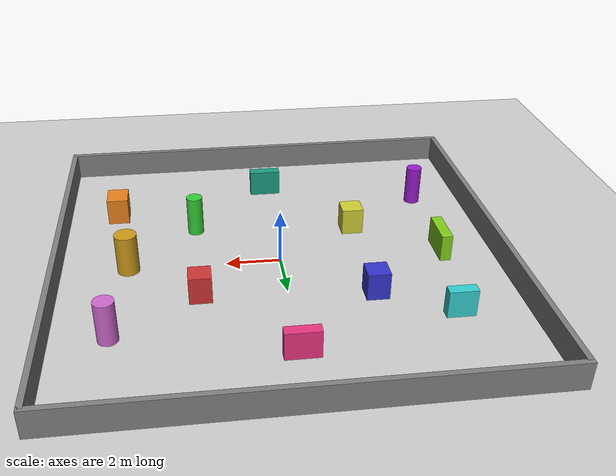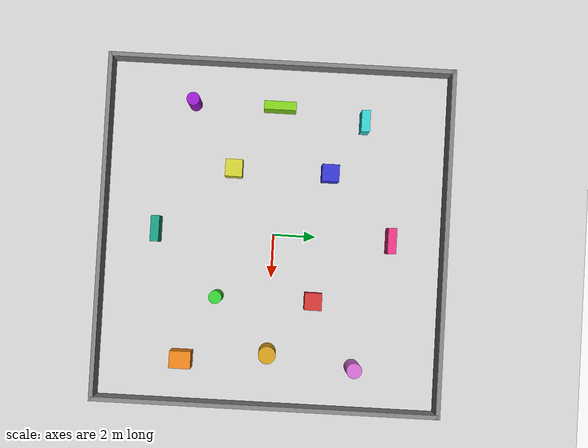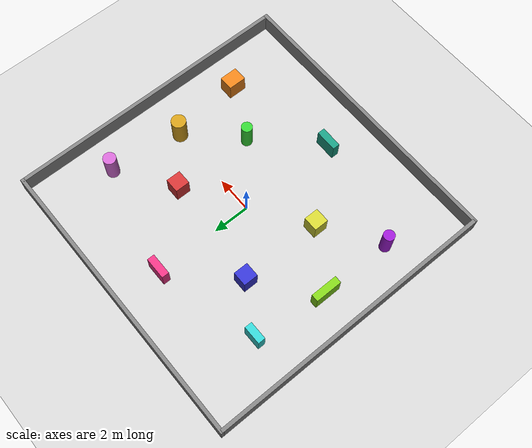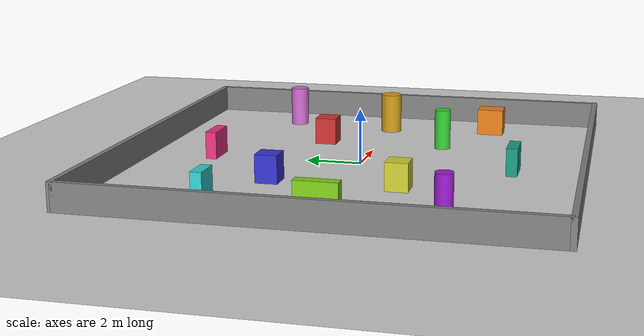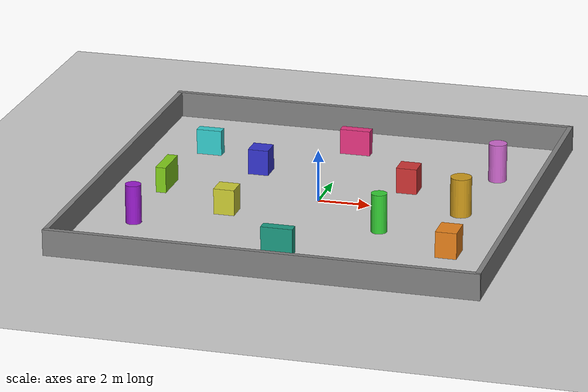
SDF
<?xml version="1.0" ?>
<sdf version="1.6">
  <world name="default">
    <physics name="1ms" type="ignored">
      <max_step_size>0.001</max_step_size>
      <real_time_factor>1.0</real_time_factor>
    </physics>
    <plugin filename="libignition-gazebo-physics-system.so"
            name="ignition::gazebo::systems::Physics"/>
    <plugin filename="libignition-gazebo-user-commands-system.so"
            name="ignition::gazebo::systems::UserCommands"/>
    <plugin filename="libignition-gazebo-scene-broadcaster-system.so"
            name="ignition::gazebo::systems::SceneBroadcaster"/>

    <light type="directional" name="sun">
      <cast_shadows>true</cast_shadows>
      <pose>0 0 10 0 0 0</pose>
      <diffuse>0.8 0.8 0.8 1</diffuse>
      <specular>0.2 0.2 0.2 1</specular>
      <attenuation>
        <range>1000</range><constant>0.9</constant>
        <linear>0.01</linear><quadratic>0.001</quadratic>
      </attenuation>
      <direction>-0.5 0.1 -0.9</direction>
    </light>

    <!-- Ground -->
    <model name="ground_plane"><static>true</static>
      <link name="link">
        <collision name="collision"><geometry><plane><normal>0 0 1</normal><size>100 100</size></plane></geometry></collision>
        <visual name="visual"><geometry><plane><normal>0 0 1</normal><size>100 100</size></plane></geometry>
          <material><ambient>0.8 0.8 0.8 1</ambient><diffuse>0.8 0.8 0.8 1</diffuse></material></visual>
      </link>
    </model>

    <!-- Outer boundary walls (16×16 m) -->
    <model name="wall_n"><static>true</static><pose>0 8 0.5 0 0 0</pose>
      <link name="link"><collision name="c"><geometry><box><size>16.2 0.2 1</size></box></geometry></collision>
        <visual name="v"><geometry><box><size>16.2 0.2 1</size></box></geometry>
          <material><ambient>0.5 0.5 0.5 1</ambient><diffuse>0.5 0.5 0.5 1</diffuse></material></visual></link>
    </model>
    <model name="wall_s"><static>true</static><pose>0 -8 0.5 0 0 0</pose>
      <link name="link"><collision name="c"><geometry><box><size>16.2 0.2 1</size></box></geometry></collision>
        <visual name="v"><geometry><box><size>16.2 0.2 1</size></box></geometry>
          <material><ambient>0.5 0.5 0.5 1</ambient><diffuse>0.5 0.5 0.5 1</diffuse></material></visual></link>
    </model>
    <model name="wall_e"><static>true</static><pose>8 0 0.5 0 0 0</pose>
      <link name="link"><collision name="c"><geometry><box><size>0.2 16 1</size></box></geometry></collision>
        <visual name="v"><geometry><box><size>0.2 16 1</size></box></geometry>
          <material><ambient>0.5 0.5 0.5 1</ambient><diffuse>0.5 0.5 0.5 1</diffuse></material></visual></link>
    </model>
    <model name="wall_w"><static>true</static><pose>-8 0 0.5 0 0 0</pose>
      <link name="link"><collision name="c"><geometry><box><size>0.2 16 1</size></box></geometry></collision>
        <visual name="v"><geometry><box><size>0.2 16 1</size></box></geometry>
          <material><ambient>0.5 0.5 0.5 1</ambient><diffuse>0.5 0.5 0.5 1</diffuse></material></visual></link>
    </model>

    <!-- Obstacles — all ≥ 1.5 m from walls and each other, ≥ 1.5 m from origin -->
    <model name="box_obstacle_1"><static>true</static><pose>3 2 0.5 0 0 0</pose>
      <link name="link"><collision name="c"><geometry><box><size>0.8 0.8 1</size></box></geometry></collision>
        <visual name="v"><geometry><box><size>0.8 0.8 1</size></box></geometry>
          <material><ambient>0.8 0.2 0.2 1</ambient><diffuse>0.8 0.2 0.2 1</diffuse></material></visual></link>
    </model>
    <model name="cylinder_obstacle_1"><static>true</static><pose>3 -2.5 0.75 0 0 0</pose>
      <link name="link"><collision name="c"><geometry><cylinder><radius>0.3</radius><length>1.5</length></cylinder></geometry></collision>
        <visual name="v"><geometry><cylinder><radius>0.3</radius><length>1.5</length></cylinder></geometry>
          <material><ambient>0.2 0.8 0.2 1</ambient><diffuse>0.2 0.8 0.2 1</diffuse></material></visual></link>
    </model>
    <model name="box_obstacle_2"><static>true</static><pose>-3 2.5 0.5 0 0 0</pose>
      <link name="link"><collision name="c"><geometry><box><size>0.8 0.8 1</size></box></geometry></collision>
        <visual name="v"><geometry><box><size>0.8 0.8 1</size></box></geometry>
          <material><ambient>0.2 0.2 0.8 1</ambient><diffuse>0.2 0.2 0.8 1</diffuse></material></visual></link>
    </model>
    <model name="box_obstacle_3"><static>true</static><pose>-3 -2 0.5 0 0 0</pose>
      <link name="link"><collision name="c"><geometry><box><size>0.8 0.8 1</size></box></geometry></collision>
        <visual name="v"><geometry><box><size>0.8 0.8 1</size></box></geometry>
          <material><ambient>0.8 0.8 0.2 1</ambient><diffuse>0.8 0.8 0.2 1</diffuse></material></visual></link>
    </model>
    <model name="cylinder_obstacle_2"><static>true</static><pose>6 4 0.75 0 0 0</pose>
      <link name="link"><collision name="c"><geometry><cylinder><radius>0.35</radius><length>1.5</length></cylinder></geometry></collision>
        <visual name="v"><geometry><cylinder><radius>0.35</radius><length>1.5</length></cylinder></geometry>
          <material><ambient>0.8 0.4 0.8 1</ambient><diffuse>0.8 0.4 0.8 1</diffuse></material></visual></link>
    </model>
    <model name="box_obstacle_4"><static>true</static><pose>-5.5 4 0.5 0 0 0</pose>
      <link name="link"><collision name="c"><geometry><box><size>1.0 0.4 1</size></box></geometry></collision>
        <visual name="v"><geometry><box><size>1.0 0.4 1</size></box></geometry>
          <material><ambient>0.2 0.8 0.8 1</ambient><diffuse>0.2 0.8 0.8 1</diffuse></material></visual></link>
    </model>
    <model name="box_obstacle_5"><static>true</static><pose>6 -4 0.5 0 0 0</pose>
      <link name="link"><collision name="c"><geometry><box><size>0.8 1.0 1</size></box></geometry></collision>
        <visual name="v"><geometry><box><size>0.8 1.0 1</size></box></geometry>
          <material><ambient>0.9 0.5 0.1 1</ambient><diffuse>0.9 0.5 0.1 1</diffuse></material></visual></link>
    </model>
    <model name="cylinder_obstacle_3"><static>true</static><pose>-6 -4 0.75 0 0 0</pose>
      <link name="link"><collision name="c"><geometry><cylinder><radius>0.3</radius><length>1.5</length></cylinder></geometry></collision>
        <visual name="v"><geometry><cylinder><radius>0.3</radius><length>1.5</length></cylinder></geometry>
          <material><ambient>0.6 0.1 0.8 1</ambient><diffuse>0.6 0.1 0.8 1</diffuse></material></visual></link>
    </model>
    <model name="box_obstacle_6"><static>true</static><pose>0 5.5 0.5 0 0 0</pose>
      <link name="link"><collision name="c"><geometry><box><size>1.2 0.4 1</size></box></geometry></collision>
        <visual name="v"><geometry><box><size>1.2 0.4 1</size></box></geometry>
          <material><ambient>0.9 0.2 0.5 1</ambient><diffuse>0.9 0.2 0.5 1</diffuse></material></visual></link>
    </model>
    <model name="box_obstacle_7"><static>true</static><pose>0 -5.5 0.5 0 0 0</pose>
      <link name="link"><collision name="c"><geometry><box><size>1.2 0.4 1</size></box></geometry></collision>
        <visual name="v"><geometry><box><size>1.2 0.4 1</size></box></geometry>
          <material><ambient>0.1 0.6 0.5 1</ambient><diffuse>0.1 0.6 0.5 1</diffuse></material></visual></link>
    </model>
    <model name="box_obstacle_8"><static>true</static><pose>-6 0 0.5 0 0 0</pose>
      <link name="link"><collision name="c"><geometry><box><size>0.4 1.5 1</size></box></geometry></collision>
        <visual name="v"><geometry><box><size>0.4 1.5 1</size></box></geometry>
          <material><ambient>0.5 0.8 0.1 1</ambient><diffuse>0.5 0.8 0.1 1</diffuse></material></visual></link>
    </model>
    <model name="cylinder_obstacle_4"><static>true</static><pose>5.5 0 0.75 0 0 0</pose>
      <link name="link"><collision name="c"><geometry><cylinder><radius>0.4</radius><length>1.5</length></cylinder></geometry></collision>
        <visual name="v"><geometry><cylinder><radius>0.4</radius><length>1.5</length></cylinder></geometry>
          <material><ambient>0.8 0.6 0.1 1</ambient><diffuse>0.8 0.6 0.1 1</diffuse></material></visual></link>
    </model>

  </world>
</sdf>
